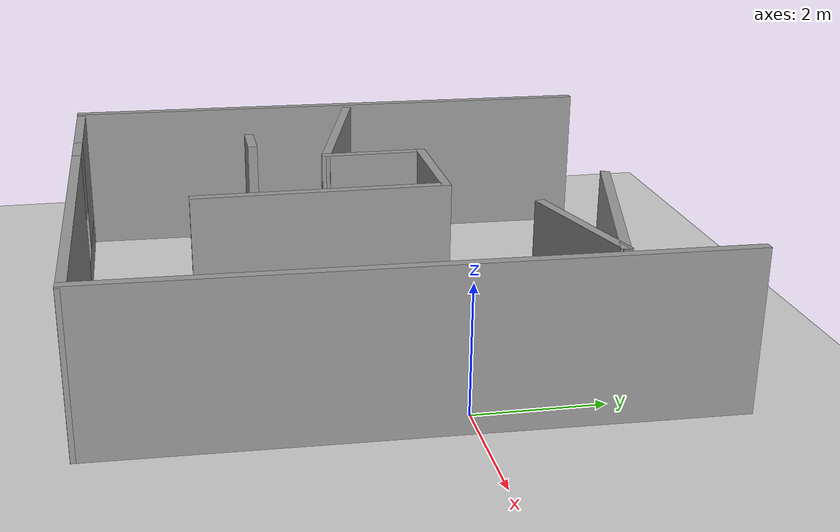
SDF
<sdf version="1.7">
 <world name="default">
  <light name="sun" type="directional">
   <pose>0 0 10 0 -0 0</pose>
   <diffuse>0.8 0.8 0.8 1</diffuse>
   <specular>0.2 0.2 0.2 1</specular>
   <attenuation>
    <range>1000</range>
    <constant>0.9</constant>
    <linear>0.01</linear>
    <quadratic>0.001</quadratic>
   </attenuation>
   <direction>-0.5 0.1 -0.9</direction>
   <spot><inner_angle>0</inner_angle><outer_angle>0</outer_angle><falloff>0</falloff></spot>
  </light>
  <model name="ground_plane">
   <static>1</static>
   <link name="link">
    <collision name="collision">
     <geometry><plane><normal>0 0 1</normal><size>100 100</size></plane></geometry>
     <surface>
      <contact><collide_bitmask>65535</collide_bitmask></contact>
      <friction><ode><mu>100</mu><mu2>50</mu2></ode></friction>
     </surface>
    </collision>
    <visual name="visual">
     <cast_shadows>0</cast_shadows>
     <geometry><plane><normal>0 0 1</normal><size>100 100</size></plane></geometry>
     <material>
      <script><uri>file://media/materials/scripts/gazebo.material</uri><name>Gazebo/Grey</name></script>
     </material>
    </visual>
   </link>
  </model>
  <gravity>0 0 -9.8</gravity>
  <magnetic_field>6e-06 2.3e-05 -4.2e-05</magnetic_field>
  <atmosphere type="adiabatic"/>
  <physics type="ode">
   <max_step_size>0.001</max_step_size>
   <real_time_factor>1</real_time_factor>
   <real_time_update_rate>1000</real_time_update_rate>
  </physics>
  <scene><ambient>0.4 0.4 0.4 1</ambient><background>0.7 0.7 0.7 1</background><shadows>1</shadows></scene>
  <audio><device>default</device></audio>
  <spherical_coordinates>
   <surface_model>EARTH_WGS84</surface_model>
   <latitude_deg>0</latitude_deg>
   <longitude_deg>0</longitude_deg>
   <elevation>0</elevation>
   <heading_deg>0</heading_deg>
  </spherical_coordinates>
  <model name="Untitled">
   <pose>-3.76012 -0.790423 0 0 -0 0</pose>
   <link name="Door_0">
    <collision name="Door_0_Collision">
     <geometry><box><size>0.9 0.17 2</size></box></geometry>
     <pose>0 0 1 0 -0 0</pose>
    </collision>
    <visual name="Door_0_Visual">
     <pose>0 0 1 0 -0 0</pose>
     <geometry><box><size>0.9 0.17 2</size></box></geometry>
     <material>
      <script><uri>file://media/materials/scripts/gazebo.material</uri><name>Gazebo/Grey</name></script>
     </material>
    </visual>
    <pose>-3.76227 -1.58579 0 0 -0 0</pose>
   </link>
   <link name="Wall_1">
    <collision name="Wall_1_Collision">
     <geometry><box><size>9.40173 0.15 2.5</size></box></geometry>
     <pose>0 0 1.25 0 -0 0</pose>
    </collision>
    <visual name="Wall_1_Visual">
     <pose>0 0 1.25 0 -0 0</pose>
     <geometry><box><size>9.40173 0.15 2.5</size></box></geometry>
     <material>
      <script><uri>file://media/materials/scripts/gazebo.material</uri><name>Gazebo/Grey</name></script>
      <ambient>1 1 1 1</ambient>
     </material>
     <meta><layer>0</layer></meta>
    </visual>
    <pose>4.19996 0.02496 0 0 -0 -1.59476</pose>
   </link>
   <link name="Wall_10">
    <collision name="Wall_10_Collision">
     <geometry><box><size>3.5 0.15 2.5</size></box></geometry>
     <pose>0 0 1.25 0 -0 0</pose>
    </collision>
    <visual name="Wall_10_Visual">
     <pose>0 0 1.25 0 -0 0</pose>
     <geometry><box><size>3.5 0.15 2.5</size></box></geometry>
     <material>
      <script><uri>file://media/materials/scripts/gazebo.material</uri><name>Gazebo/Grey</name></script>
      <ambient>1 1 1 1</ambient>
     </material>
     <meta><layer>0</layer></meta>
    </visual>
    <pose>2.42143 3.23033 0 0 -0 -0.261799</pose>
   </link>
   <link name="Wall_11">
    <collision name="Wall_11_Collision">
     <geometry><box><size>2.25 0.15 2.5</size></box></geometry>
     <pose>0 0 1.25 0 -0 0</pose>
    </collision>
    <visual name="Wall_11_Visual">
     <pose>0 0 1.25 0 -0 0</pose>
     <geometry><box><size>2.25 0.15 2.5</size></box></geometry>
     <material>
      <script><uri>file://media/materials/scripts/gazebo.material</uri><name>Gazebo/Grey</name></script>
      <ambient>1 1 1 1</ambient>
     </material>
     <meta><layer>0</layer></meta>
    </visual>
    <pose>3.02514 2.52505 0 0 -0 -2.87979</pose>
   </link>
   <link name="Wall_2">
    <pose>-0.110881 -4.62458 0 0 -0 -3.13564</pose>
    <visual name="Wall_2_Visual_0">
     <pose>-1.37653 0 1.2395 0 -0 0</pose>
     <geometry><box><size>5.79709 0.15 2.479</size></box></geometry>
     <material>
      <script><uri>file://media/materials/scripts/gazebo.material</uri><name>Gazebo/Grey</name></script>
      <ambient>1 1 1 1</ambient>
     </material>
     <meta><layer>0</layer></meta>
    </visual>
    <collision name="Wall_2_Collision_0">
     <geometry><box><size>5.79709 0.15 2.479</size></box></geometry>
     <pose>-1.37653 0 1.2395 0 -0 0</pose>
    </collision>
    <visual name="Wall_2_Visual_1">
     <pose>2.89854 0 0.25 0 -0 0</pose>
     <geometry><box><size>2.75306 0.15 0.5</size></box></geometry>
     <material>
      <script><uri>file://media/materials/scripts/gazebo.material</uri><name>Gazebo/Grey</name></script>
      <ambient>1 1 1 1</ambient>
     </material>
     <meta><layer>0</layer></meta>
    </visual>
    <collision name="Wall_2_Collision_1">
     <geometry><box><size>2.75306 0.15 0.5</size></box></geometry>
     <pose>2.89854 0 0.25 0 -0 0</pose>
    </collision>
    <visual name="Wall_2_Visual_2">
     <pose>3.29854 0 1.4895 0 -0 0</pose>
     <geometry><box><size>1.95306 0.15 1.979</size></box></geometry>
     <material>
      <script><uri>file://media/materials/scripts/gazebo.material</uri><name>Gazebo/Grey</name></script>
      <ambient>1 1 1 1</ambient>
     </material>
     <meta><layer>0</layer></meta>
    </visual>
    <collision name="Wall_2_Collision_2">
     <geometry><box><size>1.95306 0.15 1.979</size></box></geometry>
     <pose>3.29854 0 1.4895 0 -0 0</pose>
    </collision>
    <visual name="Wall_2_Visual_3">
     <pose>1.92201 0 1.8895 0 -0 0</pose>
     <geometry><box><size>0.8 0.15 1.179</size></box></geometry>
     <material>
      <script><uri>file://media/materials/scripts/gazebo.material</uri><name>Gazebo/Grey</name></script>
      <ambient>1 1 1 1</ambient>
     </material>
     <meta><layer>0</layer></meta>
    </visual>
    <collision name="Wall_2_Collision_3">
     <geometry><box><size>0.8 0.15 1.179</size></box></geometry>
     <pose>1.92201 0 1.8895 0 -0 0</pose>
    </collision>
   </link>
   <link name="Wall_3">
    <collision name="Wall_3_Collision">
     <geometry><box><size>9.41149 0.15 2.5</size></box></geometry>
     <pose>0 0 1.25 0 -0 0</pose>
    </collision>
    <visual name="Wall_3_Visual">
     <pose>0 0 1.25 0 -0 0</pose>
     <geometry><box><size>9.41149 0.15 2.5</size></box></geometry>
     <material>
      <script><uri>file://media/materials/scripts/gazebo.material</uri><name>Gazebo/Grey</name></script>
      <ambient>1 1 1 1</ambient>
     </material>
     <meta><layer>0</layer></meta>
    </visual>
    <pose>-4.20504 -0.02004 0 0 -0 1.54794</pose>
   </link>
   <link name="Wall_5">
    <collision name="Wall_5_Collision">
     <geometry><box><size>3.25 0.15 2.5</size></box></geometry>
     <pose>0 0 1.25 0 -0 0</pose>
    </collision>
    <visual name="Wall_5_Visual">
     <pose>0 0 1.25 0 -0 0</pose>
     <geometry><box><size>3.25 0.15 2.5</size></box></geometry>
     <material>
      <script><uri>file://media/materials/scripts/gazebo.material</uri><name>Gazebo/Grey</name></script>
      <ambient>1 1 1 1</ambient>
     </material>
     <meta><layer>0</layer></meta>
    </visual>
    <pose>-2.40588 -0.156621 0 0 -0 -0.261799</pose>
   </link>
   <link name="Wall_6">
    <collision name="Wall_6_Collision">
     <geometry><box><size>1.75 0.15 2.5</size></box></geometry>
     <pose>0 0 1.25 0 -0 0</pose>
    </collision>
    <visual name="Wall_6_Visual">
     <pose>0 0 1.25 0 -0 0</pose>
     <geometry><box><size>1.75 0.15 2.5</size></box></geometry>
     <material>
      <script><uri>file://media/materials/scripts/gazebo.material</uri><name>Gazebo/Grey</name></script>
      <ambient>1 1 1 1</ambient>
     </material>
     <meta><layer>0</layer></meta>
    </visual>
    <pose>-0.908698 0.24221 0 0 -0 1.5708</pose>
   </link>
   <link name="Wall_7">
    <collision name="Wall_7_Collision">
     <geometry><box><size>2 0.15 2.5</size></box></geometry>
     <pose>0 0 1.25 0 -0 0</pose>
    </collision>
    <visual name="Wall_7_Visual">
     <pose>0 0 1.25 0 -0 0</pose>
     <geometry><box><size>2 0.15 2.5</size></box></geometry>
     <material>
      <script><uri>file://media/materials/scripts/gazebo.material</uri><name>Gazebo/Grey</name></script>
      <ambient>1 1 1 1</ambient>
     </material>
     <meta><layer>0</layer></meta>
    </visual>
    <pose>0.016302 1.04221 0 0 -0 0</pose>
   </link>
   <link name="Wall_8">
    <collision name="Wall_8_Collision">
     <geometry><box><size>4 0.15 2.5</size></box></geometry>
     <pose>0 0 1.25 0 -0 0</pose>
    </collision>
    <visual name="Wall_8_Visual">
     <pose>0 0 1.25 0 -0 0</pose>
     <geometry><box><size>4 0.15 2.5</size></box></geometry>
     <material>
      <script><uri>file://media/materials/scripts/gazebo.material</uri><name>Gazebo/Grey</name></script>
      <ambient>1 1 1 1</ambient>
     </material>
     <meta><layer>0</layer></meta>
    </visual>
    <pose>0.941302 -0.88279 0 0 -0 -1.5708</pose>
   </link>
   <static>1</static>
  </model>
 </world>
</sdf>
